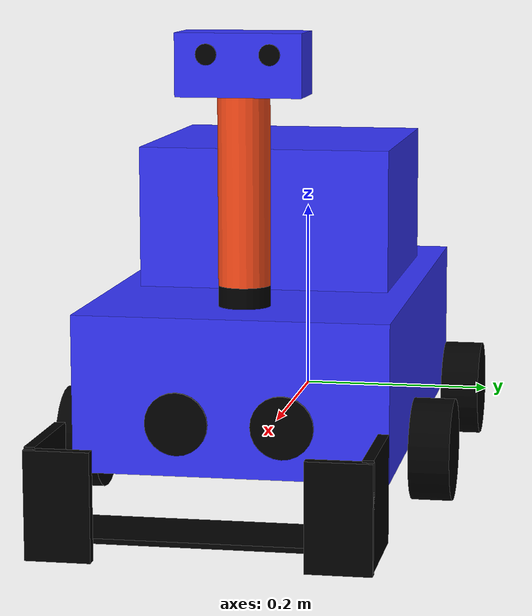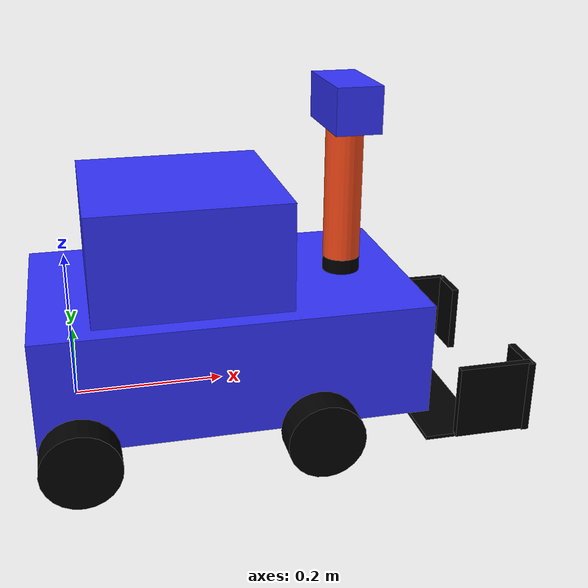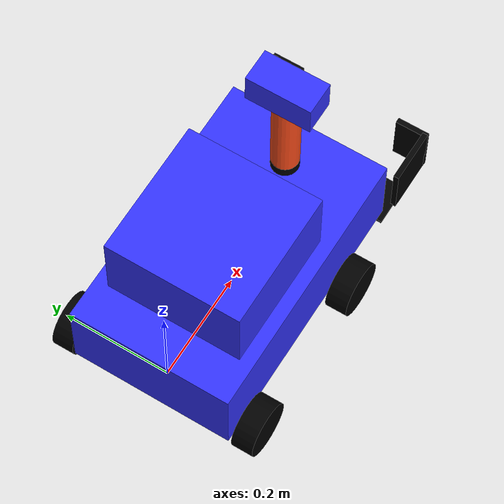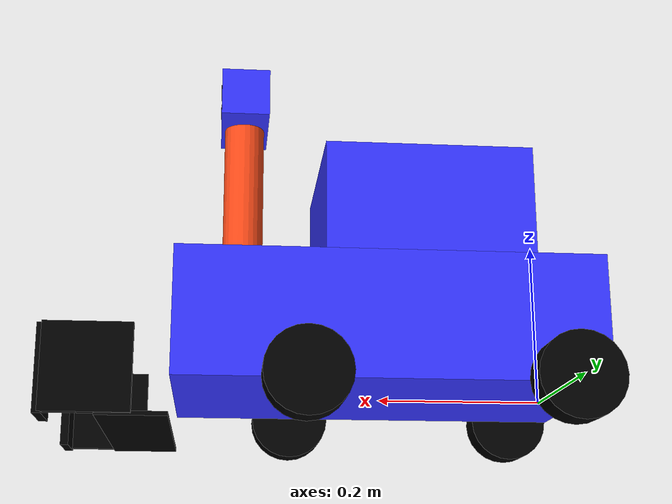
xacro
<?xml version="1.0"?>
<robot xmlns:xacro="http://www.ros.org/wiki/xacro" >

    <xacro:include filename="inertial_macros.xacro"/>

    <material name="white">
        <color rgba="1 1 1 1" />
    </material>

    <material name="orange">
        <color rgba="1 0.3 0.1 1"/>
    </material>

    <material name="blue">
        <color rgba="0.2 0.2 1 1"/>
    </material>

    <material name="black">
        <color rgba="0 0 0 1"/>
    </material>

    <material name="red">
        <color rgba="1 0 0 1"/>
    </material>

    <!-- BASE LINK -->

    <link name="base_link">

    </link>

    <!-- CHASSIS LINK -->

    <joint name="chassis_joint" type="fixed">
        <parent link="base_link"/>
        <child link="chassis"/>
        <origin xyz="0.05 0 0"/>
    </joint>

    <link name="chassis">
        <visual>
            <origin xyz="0.15 0 0.075"/>
            <geometry>
                <box size="0.5 0.3 0.15"/>
            </geometry>
            <material name="blue"/>
        </visual>
        <collision>
            <origin xyz="0.15 0 0.075"/>
            <geometry>
                <box size="0.5 0.3 0.15"/>
            </geometry>
        </collision>
        <xacro:inertial_box mass="8.5" x="0.5" y="0.3" z="0.15">
            <origin xyz="0.15 0 0.075" rpy="0 0 0"/>
        </xacro:inertial_box>
    </link>

    <gazebo reference="chassis">
        <material>Gazebo/Blue</material>
    </gazebo>

    <joint name="face_joint" type="fixed">
        <parent link="box"/>
        <child link="face_link"/>
        <origin xyz="0.03 0 0.01" rpy="0 0 0"/>
    </joint>

    <link name="face_link">
        <visual>
            <origin xyz="0 0.03 0" rpy="0 ${pi/2} 0"/>
            <geometry>
                <cylinder radius="0.01" length="0.002"/>
            </geometry>
            <material name="black"/>
        </visual>

        <visual>
            <origin xyz="0 -0.03 0" rpy="0 ${pi/2} 0"/>
            <geometry>
                <cylinder radius="0.01" length="0.002"/>
            </geometry>
            <material name="black"/>
        </visual>
    </link>
    <gazebo reference="face_link">
        <material>Gazebo/Black</material>
    </gazebo>

    <!-- LEFT WHEEL LINK -->

    <joint name="left_wheel_joint" type="continuous">
        <parent link="base_link"/>
        <child link="left_wheel"/>
        <origin xyz="0 0.175 0" rpy="-${pi/2} 0 0" />
        <axis xyz="0 0 1"/>
    </joint>

    <link name="left_wheel">
        <visual>
            <geometry>
                <cylinder radius="0.05" length="0.04"/>
            </geometry>
            <material name="black"/>
        </visual>
        <collision>
            <geometry>
                <cylinder radius="0.05" length="0.04"/>
            </geometry>
        </collision>
        <xacro:inertial_cylinder mass="1.1" length="0.04" radius="0.05">
            <origin xyz="0 0 0" rpy="0 0 0"/>
        </xacro:inertial_cylinder>
    </link>
    <gazebo reference="left_wheel">
        <material>Gazebo/Black</material>
    </gazebo>

    <!-- RIGHT WHEEL LINK -->

    <joint name="right_wheel_joint" type="continuous">
        <parent link="base_link"/>
        <child link="right_wheel"/>
        <origin xyz="0 -0.175 0" rpy="${pi/2} 0 0" />
        <axis xyz="0 0 -1"/>
    </joint>

    <link name="right_wheel">
        <visual>
            <geometry>
                <cylinder radius="0.05" length="0.04"/>
            </geometry>
            <material name="black"/>
        </visual>
        <collision>
            <geometry>
                <cylinder radius="0.05" length="0.04"/>
            </geometry>
        </collision>
        <xacro:inertial_cylinder mass="1.1" length="0.04" radius="0.08">
            <origin xyz="0 0 0" rpy="0 0 0"/>
        </xacro:inertial_cylinder>
    </link>
    <gazebo reference="Right_wheel">
        <material>Gazebo/Black</material>
    </gazebo>

    <!-- Dummy RIGHT WHEEL LINK -->

    <joint name="dum_right_wheel_joint" type="fixed">
        <parent link="base_link"/>
        <child link="dum_right_wheel"/>
        <origin xyz="0.3 -0.175 0" rpy="${pi/2} 0 0" />
        <axis xyz="0 0 -1"/>
    </joint>

    <link name="dum_right_wheel">
        <visual>
            <geometry>
                <cylinder radius="0.05" length="0.04"/>
            </geometry>
            <material name="black"/>
        </visual>
        <collision>
            <geometry>
                <cylinder radius="0.05" length="0.04"/>
            </geometry>
        </collision>
        <xacro:inertial_cylinder mass="1.1" length="0.04" radius="0.05">
            <origin xyz="0 0 0" rpy="0 0 0"/>
        </xacro:inertial_cylinder>
    </link>
    <gazebo reference="dum_right_wheel">
        <material>Gazebo/Black</material>
        <mu1 value="0.001"/>
        <mu2 value="0.001"/>
    </gazebo>

    <!-- Dummy LEFT WHEEL LINK -->

    <joint name="dum_left_wheel_joint" type="fixed">
        <parent link="base_link"/>
        <child link="dum_left_wheel"/>
        <origin xyz="0.3 0.175 0" rpy="${pi/2} 0 0" />
        <axis xyz="0 0 1"/>
    </joint>

    <link name="dum_left_wheel">
        <visual>
            <geometry>
                <cylinder radius="0.05" length="0.04"/>
            </geometry>
            <material name="black"/>
        </visual>
        <collision>
            <geometry>
                <cylinder radius="0.05" length="0.04"/>
            </geometry>
        </collision>
        <xacro:inertial_cylinder mass="1.1" length="0.04" radius="0.05">
            <origin xyz="0 0 0" rpy="0 0 0"/>
        </xacro:inertial_cylinder>
    </link>
    <gazebo reference="dum_left_wheel">
        <material>Gazebo/Black</material>
        <mu1 value="0.001"/>
        <mu2 value="0.001"/>
    </gazebo>

    <!-- back LINK -->

    <joint name="back_joint" type="fixed">
        <parent link="chassis"/>
        <child link="back"/>
        <origin xyz="0.1 0 0.22" rpy="0 0 0" />
        <axis xyz="0 0 1"/>
    </joint>

    <link name="back">
        <visual>
            <origin xyz="0 0 0"/>
            <geometry>
                <box size="0.25 0.25 0.14"/>
            </geometry>
            <material name="blue"/>
        </visual>
        <collision>
            <origin xyz="0 0 0"/>
            <geometry>
                <box size="0.25 0.25 0.14"/>
            </geometry>
        </collision>
        <xacro:inertial_box mass="2.1" x="0.25" y="0.25" z="0.14">
            <origin xyz="0 0 0" rpy="0 0 0"/>
        </xacro:inertial_box>
    </link>
    <gazebo reference="back">
        <material>Gazebo/Blue</material>
    </gazebo>

   <!-- support LINK -->

    <joint name="support_joint" type="fixed">
        <parent link="chassis"/>
        <child link="support"/>
        <origin xyz="0.32 0 0.16" rpy="0 0 0" />
    </joint>

    <link name="support">
        <visual>
            <geometry>
                <cylinder radius="0.025" length="0.02"/>
            </geometry>
            <material name="black"/>
        </visual>
        <collision>
            <geometry>
                <cylinder radius="0.025" length="0.02"/>
            </geometry>
        </collision>
        <xacro:inertial_cylinder mass="0.1" length="0.02" radius="0.025">
            <origin xyz="0 0 0" rpy="0 0 0"/>
        </xacro:inertial_cylinder>
    </link>
    <gazebo reference="support">
        <material>Gazebo/Black</material>
    </gazebo>

    <!-- box LINK -->

    <joint name="box_joint" type="fixed">
        <parent link="support1"/>
        <child link="box"/>
        <origin xyz="0 0 0.12" rpy="0 0 0" />
        <axis xyz="0 0 1"/>
    </joint>

    <link name="box">
        <visual>
            <origin xyz="0 0 0"/>
            <geometry>
                <box size="0.06 0.12 0.06"/>
            </geometry>
            <material name="blue"/>
        </visual>
        <collision>
            <origin xyz="0 0 0"/>
            <geometry>
                <box size="0.06 0.12 0.06"/>
            </geometry>
        </collision>
        <xacro:inertial_box mass="0.1" x="0.06" y="0.12" z="0.06">
            <origin xyz="0 0 0" rpy="0 0 0"/>
        </xacro:inertial_box>
    </link>
    <gazebo reference="box">
        <material>Gazebo/Blue</material>
    </gazebo>

    <!-- support1 LINK -->

    <joint name="support1_joint" type="fixed">
        <parent link="support"/>
        <child link="support1"/>
        <origin xyz="0 0 0.10" rpy="0 0 0" />
    </joint>

    <link name="support1">
        <visual>
            <geometry>
                <cylinder radius="0.025" length="0.18"/>
            </geometry>
            <material name="orange"/>
        </visual>
        <collision>
            <geometry>
                <cylinder radius="0.025" length="0.18"/>
            </geometry>
        </collision>
        <xacro:inertial_cylinder mass="0.1" length="0.18" radius="0.025">
            <origin xyz="0 0 0" rpy="0 0 0"/>
        </xacro:inertial_cylinder>
    </link>
    <gazebo reference="support1">
        <material>Gazebo/Orange</material>
    </gazebo>

    <!-- lift Link -->

    <joint name="lift_joint" type="prismatic">
        <parent link="chassis"/>
        <child link="lift"/>
        <origin xyz="0.29 0 -0.0449" rpy="0 0 0" />
        <limit lower="0.0" upper="0.11" velocity="100" effort="100"/>
        <axis xyz="0 0 1"/>
    </joint>

    <link name="lift">
        <visual>
            <origin xyz="0.15 0 0.002"/>
            <geometry>
                <box size="0.08 0.3 0.005"/>
            </geometry>
            <material name="black"/>
        </visual>
        <collision>
            <origin xyz="0.15 0 0.005"/>
            <geometry>
                <box size="0.08 0.3 0.00001"/>
            </geometry>
        </collision>
        <xacro:inertial_box mass="0.1" x="0.08" y="0.3" z="0.005">
            <origin xyz="0.15 0 0.002" rpy="0 0 0"/>
        </xacro:inertial_box>
    </link>
    <gazebo reference="lift">
        <material>Gazebo/Black</material>
        <mu1 value="0.00001"/>
        <mu2 value="0.00001"/>
    </gazebo>

    <!-- forkone Link -->

    <joint name="forkone_joint" type="prismatic">
        <parent link="lift"/>
        <child link="forkone"/>
        <origin xyz="0.05 -0.15 0.05" rpy="0.0 0.0 0.0" />
        <limit lower="0" upper="0.085" velocity="10" effort="1000.0"/>
        <axis xyz="0 1 0"/>
    </joint>

    <link name="forkone">
        <visual>
            <origin xyz="0.15 0 0.002"/>
            <geometry>
                <box size="0.1 0.01 0.1"/>
            </geometry>
            <material name="black"/>
        </visual>
        <collision>
            <origin xyz="0.15 0 0.002"/>
            <geometry>
                <box size="0.1 0.01 0.1"/>
            </geometry>
        </collision>
        <xacro:inertial_box mass="0.1" x="0.1" y="0.01" z="0.1">
            <origin xyz="0.15 0 0.002" rpy="0 0 0"/>
        </xacro:inertial_box>
    </link>
    <gazebo reference="forkone">
        <material>Gazebo/Black</material>
        <mu1 value="0.10001"/>
        <mu2 value="0.10001"/>
    </gazebo>

        <!-- forktwo Link -->

    <joint name="forktwo_joint" type="prismatic">
        <parent link="lift"/>
        <child link="forktwo"/>
        <origin xyz="0.05 0.15 0.05" rpy="0.0 0.0 0.0"/>
        <limit lower="0" upper="0.085" velocity="10" effort="1000.0"/>
        <axis xyz="0 -1 0"/>
    </joint>

    <link name="forktwo">
        <visual>
            <origin xyz="0.15 0 0.002"/>
            <geometry>
                <box size="0.1 0.01 0.1"/>
            </geometry>
            <material name="black"/>
        </visual>
        <collision>
            <origin xyz="0.15 0 0.002"/>
            <geometry>
                <box size="0.1 0.01 0.1"/>
            </geometry>
        </collision>
        <xacro:inertial_box mass="0.1" x="0.1" y="0.01" z="0.1">
            <origin xyz="0.15 0 0.002" rpy="0 0 0"/>
        </xacro:inertial_box>
    </link>
    <gazebo reference="forktwo">
        <material>Gazebo/Black</material>
        <mu1 value="0.10001"/>
        <mu2 value="0.10001"/>
    </gazebo>

    <!-- cap Link -->

    <joint name="cap_joint" type="fixed">
        <parent link="forktwo"/>
        <child link="cap"/>
        <origin xyz="0.2 -0.025 0.0" rpy="0.0 0.0 0.0"/>
    </joint>

    <link name="cap">
        <visual>
            <origin xyz="0.0 0.0 0.0"/>
            <geometry>
                <box size="0.01 0.06 0.1"/>
            </geometry>
            <material name="black"/>
        </visual>
        <collision>
            <origin xyz="0.0 0.0 0.0"/>
            <geometry>
                <box size="0.01 0.06 0.1"/>
            </geometry>
        </collision>
        <xacro:inertial_box mass="0.1" x="0.01" y="0.05" z="0.1">
            <origin xyz="0.0 0.0 0.0" rpy="0 0 0"/>
        </xacro:inertial_box>
    </link>
    <gazebo reference="cap">
        <material>Gazebo/Black</material>
    </gazebo>

    <!-- cap1 Link -->

    <joint name="cap1_joint" type="fixed">
        <parent link="forkone"/>
        <child link="cap1"/>
        <origin xyz="0.2 0.025 0.0" rpy="0.0 0.0 0.0"/>
    </joint>

    <link name="cap1">
        <visual>
            <origin xyz="0.0 0.0 0.0"/>
            <geometry>
                <box size="0.01 0.06 0.1"/>
            </geometry>
            <material name="black"/>
        </visual>
        <collision>
            <origin xyz="0.0 0.0 0.0"/>
            <geometry>
                <box size="0.01 0.06 0.1"/>
            </geometry>
        </collision>
        <xacro:inertial_box mass="0.1" x="0.01" y="0.06" z="0.1">
            <origin xyz="0.0 0.0 0.0" rpy="0 0 0"/>
        </xacro:inertial_box>
    </link>
    <gazebo reference="cap1">
        <material>Gazebo/Black</material>
    </gazebo>

    <joint name="vc1_joint" type="prismatic">
        <parent link="chassis"/>
        <child link="vc1"/>
        <origin xyz="0.395 -0.05 0.05" rpy="0 ${pi/2} 0"/>
        <limit lower="0" upper="0" velocity="10" effort="100.0"/>
        <axis xyz="0 1 0"/>
    </joint>

    <link name="vc1">
        <visual>
            <geometry>
                <cylinder radius="0.03" length="0.015"/>
            </geometry>
            <material name="black"/>
        </visual>
        <collision>
            <geometry>
                <cylinder radius="0.03" length="0.015"/>
            </geometry>
        </collision>
        <xacro:inertial_cylinder mass="0.001" length="0.015" radius="0.03">
            <origin xyz="0 0 0" rpy="0 0 0"/>
        </xacro:inertial_cylinder>
    </link>
    <gazebo reference="vc1">
        <material>Gazebo/Black</material>
    </gazebo>

    <joint name="vc2_joint" type="fixed">
        <parent link="chassis"/>
        <child link="vc2"/>
        <origin xyz="0.395 0.05 0.05" rpy="0 ${pi/2} 0"/>
    </joint>

    <link name="vc2">
        <visual>
            <geometry>
                <cylinder radius="0.03" length="0.015"/>
            </geometry>
            <material name="black"/>
        </visual>
        <collision>
            <geometry>
                <cylinder radius="0.03" length="0.015"/>
            </geometry>
        </collision>
        <xacro:inertial_cylinder mass="0.001" length="0.015" radius="0.03">
            <origin xyz="0 0 0" rpy="0 0 0"/>
        </xacro:inertial_cylinder>
    </link>
    <gazebo reference="vc2">
        <material>Gazebo/Black</material>
    </gazebo>

    <gazebo>

    <plugin name="gazebo_ros_joint_pose_trajectory"
          filename="libgazebo_ros_joint_pose_trajectory.so">
        <ros>
          <namespace>/vision</namespace>
          <remapping>set_joint_trajectory:=set_trajectory_demo</remapping>
        </ros>
        <update_rate>2</update_rate>
    </plugin>

    </gazebo>

    <gazebo>
    <plugin name='vacuum_gripper' filename='libgazebo_ros_vacuum_gripper.so'>

        <ros>
          <namespace>/demo</namespace>
          <remapping>switch:=switch_demo</remapping>
          <remapping>grasping:=grasping_demo</remapping>
        </ros>

        <link_name>vc1</link_name>

        <max_distance>0.8</max_distance>

        <fixed>base_link</fixed>

      </plugin>

    </gazebo>

     <gazebo>
    <plugin name='vacuum_gripper' filename='libgazebo_ros_vacuum_gripper.so'>

        <ros>
          <namespace>/demo1</namespace>
          <remapping>switch:=switch_demo</remapping>
          <remapping>grasping:=grasping_demo</remapping>
        </ros>

        <link_name>vc2</link_name>

        <max_distance>0.8</max_distance>

        <fixed>base_link</fixed>

      </plugin>

    </gazebo>

    <gazebo>
    <plugin name='vacuum_gripper' filename='libgazebo_ros_vacuum_gripper.so'>

        <ros>
          <namespace>/fork</namespace>
          <remapping>switch:=switch_demo</remapping>
          <remapping>grasping:=grasping_demo</remapping>
        </ros>

        <link_name>forkone</link_name>

        <max_distance>0.1</max_distance>

        <fixed>base_link</fixed>

      </plugin>

    </gazebo>

</robot>
